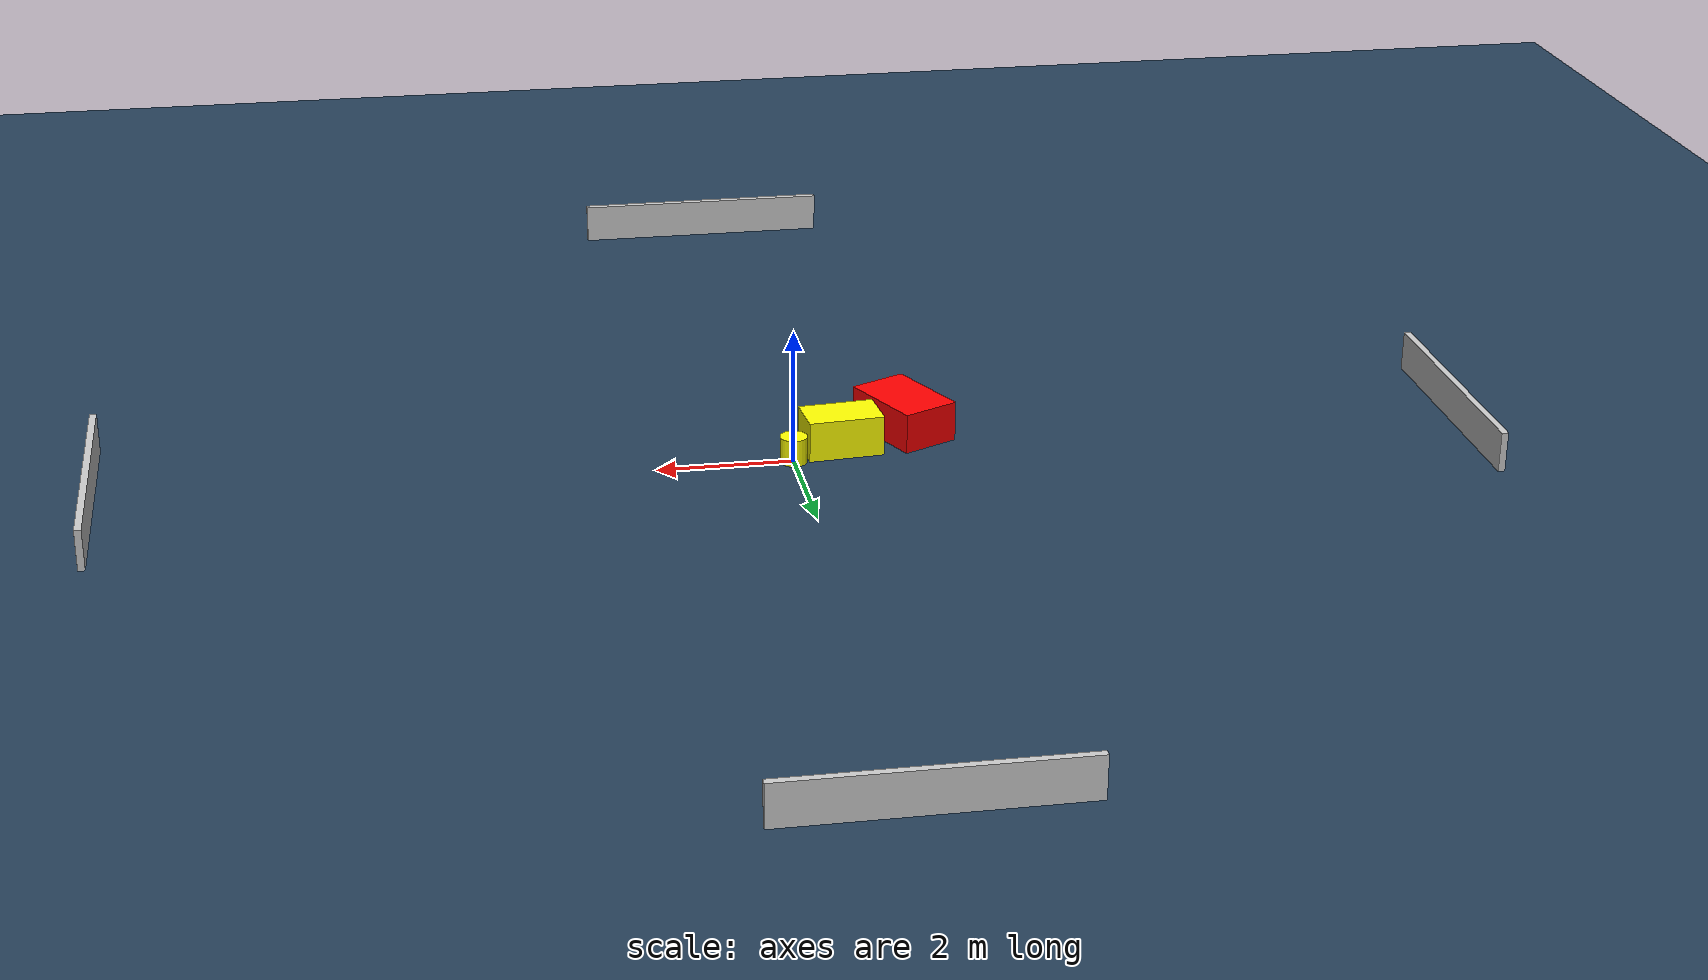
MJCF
<?xml version="1.0" ?>
<mujoco model="generated_environment">
  <option timestep="0.01" integrator="RK4" cone="elliptic"/>
  <default>
    <geom density="1"/>
  </default>
  <asset>
    <texture builtin="gradient" height="3072" name="skybox" rgb1="0.3 0.5 0.7" rgb2="0 0 0" type="skybox" width="512"/>
    <texture builtin="checker" height="300" name="groundplane" rgb1="0.2 0.3 0.4" rgb2="0.1 0.2 0.3" type="2d" width="300"/>
    <material name="groundplane" reflectance="0.2" texrepeat="5 5" texture="groundplane"/>
  </asset>
  <worldbody>
    <light dir="0 0 -1" directional="true" pos="0 0 1.5"/>
    <geom condim="3" friction="0.5 0.005 0.001" material="groundplane" name="floor" pos="0 0 0" size="0 0 0.05" type="plane"/>
    <body name="walls">
      <geom name="wall_1" condim="4" pos="-10.0 0.0 0.3" rgba="0.800000011920929 0.800000011920929 0.800000011920929 1.0" size="0.05 2.0 0.3" type="box"/>
      <geom name="wall_2" condim="4" pos="10.0 0.0 0.3" rgba="0.800000011920929 0.800000011920929 0.800000011920929 1.0" size="0.05 2.0 0.3" type="box"/>
      <geom name="wall_3" condim="4" pos="0.0 -10.0 0.3" rgba="0.800000011920929 0.800000011920929 0.800000011920929 1.0" size="2.0 0.05 0.3" type="box"/>
      <geom name="wall_4" condim="4" pos="0.0 10.0 0.3" rgba="0.800000011920929 0.800000011920929 0.800000011920929 1.0" size="2.0 0.05 0.3" type="box"/>
    </body>
    <body name="robot">
      <joint name="joint_x" type="slide" pos="0 0 0" axis="1 0 0"/>
      <joint name="joint_y" type="slide" pos="0 0 0" axis="0 1 0"/>
      <geom name="robot" type="cylinder" pos="0.0 0.0 0.2" size="0.2 0.2 0.0" mass="5.0" friction="1.0 0.005 0.0001" condim="4" rgba="1.0 1.0 0.0 1.0"/>
    </body>
    <body name="obstacle_1_movable">
      <geom name="obstacle_1_movable" condim="4" pos="-0.7534582541794919 -0.31862197744947407 0.3" euler="0 0 4.7343884761276245" friction="0.0 0.005 0.001" rgba="1.0 1.0 0.0 1.0" size="0.5602346747139957 0.33919930254799513 0.3" type="box" mass="0.1"/>
      <joint type="free"/>
    </body>
    <body name="obstacle_2_static">
      <geom name="obstacle_2_static" condim="4" pos="-1.7847659173148647 -0.8098367948066852 0.3" euler="0 0 115.3104992734287" friction="0.0 0.005 0.001" rgba="1.0 0.0 0.0 1.0" size="0.6691794744651065 0.4425522165501056 0.3" type="box"/>
    </body>
  </worldbody>
  <actuator>
    <motor name="actuator_x" joint="joint_x" gear="1" ctrlrange="-1 1"/>
    <motor name="actuator_y" joint="joint_y" gear="1" ctrlrange="-1 1"/>
  </actuator>
</mujoco>
